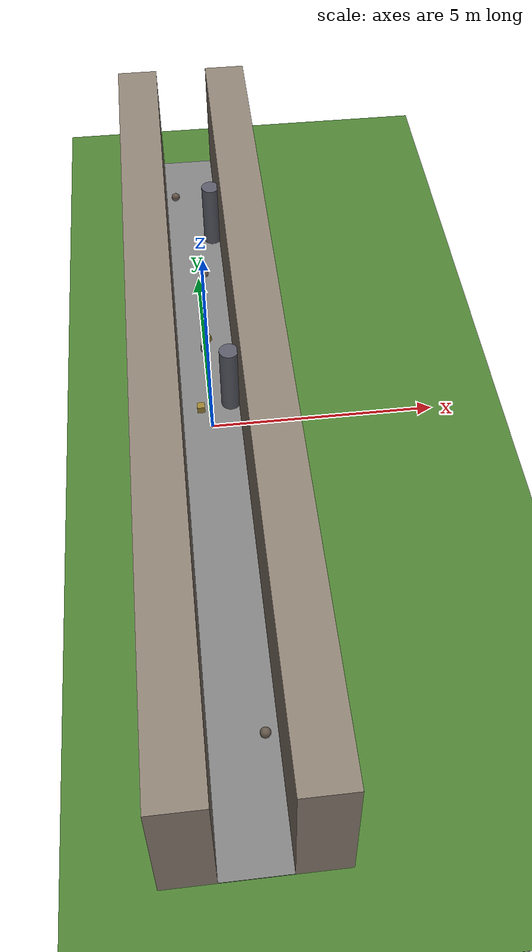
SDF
<?xml version="1.0" ?>
<sdf version="1.9">
  <world name="narrow_alley">
    <physics name="1ms" type="ignore">
      <max_step_size>0.001</max_step_size>
      <real_time_factor>1.0</real_time_factor>
    </physics>
    <plugin filename="gz-sim-physics-system" name="gz::sim::systems::Physics"/>
    <plugin filename="gz-sim-scene-broadcaster-system" name="gz::sim::systems::SceneBroadcaster"/>
    <plugin filename="gz-sim-sensors-system" name="gz::sim::systems::Sensors">
      <render_engine>ogre2</render_engine>
    </plugin>
    <plugin filename="gz-sim-user-commands-system" name="gz::sim::systems::UserCommands"/>

    <light type="directional" name="sun">
      <cast_shadows>true</cast_shadows>
      <pose>0 0 10 0 0 0</pose>
      <diffuse>0.8 0.8 0.8 1</diffuse>
      <specular>0.2 0.2 0.2 1</specular>
      <attenuation><range>1000</range><constant>0.9</constant><linear>0.01</linear><quadratic>0.001</quadratic></attenuation>
      <direction>-0.5 0.1 -0.9</direction>
    </light>

    <!-- 레이아웃 3: 좁은 골목형 -->

    <model name="ground_plane_visual">
      <static>true</static>
      <pose>0 0 -0.01 0 0 0</pose>
      <link name="link">
        <collision name="collision"><geometry><box><size>60.0 60.0 0.02</size></box></geometry></collision>
        <visual name="visual"><geometry><box><size>60.0 60.0 0.02</size></box></geometry>
          <material><ambient>0.3 0.5 0.2 1</ambient><diffuse>0.3 0.5 0.2 1</diffuse></material></visual>
      </link>
    </model>

    <model name="alley_floor">
      <static>true</static>
      <pose>0 0 0.01 0 0 0</pose>
      <link name="link">
        <collision name="collision"><geometry><box><size>1.3 20.0 0.02</size></box></geometry></collision>
        <visual name="visual"><geometry><box><size>1.3 20.0 0.02</size></box></geometry>
          <material><ambient>0.5 0.5 0.5 1</ambient><diffuse>0.5 0.5 0.5 1</diffuse></material></visual>
      </link>
    </model>

    <model name="wall_left">
      <static>true</static>
      <pose>-1.15 0 1.5 0 0 0</pose>
      <link name="link">
        <collision name="collision"><geometry><box><size>1 20.0 3</size></box></geometry></collision>
        <visual name="visual"><geometry><box><size>1 20.0 3</size></box></geometry>
          <material><ambient>0.55 0.5 0.45 1</ambient><diffuse>0.55 0.5 0.45 1</diffuse></material></visual>
      </link>
    </model>

    <model name="wall_right">
      <static>true</static>
      <pose>1.15 0 1.5 0 0 0</pose>
      <link name="link">
        <collision name="collision"><geometry><box><size>1 20.0 3</size></box></geometry></collision>
        <visual name="visual"><geometry><box><size>1 20.0 3</size></box></geometry>
          <material><ambient>0.55 0.5 0.45 1</ambient><diffuse>0.55 0.5 0.45 1</diffuse></material></visual>
      </link>
    </model>

    <model name="alley_obstacle_0">
      <static>true</static>
      <pose>-0.23 0.50 0.11 0 0 0.02</pose>
      <link name="link">
        <collision name="collision"><geometry><box><size>0.17 0.17 0.17</size></box></geometry></collision>
        <visual name="visual"><geometry><box><size>0.17 0.17 0.17</size></box></geometry>
          <material><ambient>0.6 0.5 0.2 1</ambient><diffuse>0.6 0.5 0.2 1</diffuse></material></visual>
      </link>
    </model>

    <model name="alley_obstacle_1">
      <static>true</static>
      <pose>-0.02 2.44 0.11 0 0 0</pose>
      <link name="link">
        <collision name="collision"><geometry><cylinder><radius>0.09110763973869937</radius><length>0.18221527947739874</length></cylinder></geometry></collision>
        <visual name="visual"><geometry><cylinder><radius>0.09110763973869937</radius><length>0.18221527947739874</length></cylinder></geometry>
          <material><ambient>0.5 0.5 0.5 1</ambient><diffuse>0.5 0.5 0.5 1</diffuse></material></visual>
      </link>
    </model>

    <model name="alley_obstacle_2">
      <static>true</static>
      <pose>0.06 2.74 0.10 0 0 0.58</pose>
      <link name="link">
        <collision name="collision"><geometry><box><size>0.16 0.16 0.16</size></box></geometry></collision>
        <visual name="visual"><geometry><box><size>0.16 0.16 0.16</size></box></geometry>
          <material><ambient>0.6 0.5 0.2 1</ambient><diffuse>0.6 0.5 0.2 1</diffuse></material></visual>
      </link>
    </model>

    <model name="alley_obstacle_3">
      <static>true</static>
      <pose>0.41 -7.50 0.12 0 0 0</pose>
      <link name="link">
        <collision name="collision"><geometry><sphere><radius>0.10365870447447281</radius></sphere></geometry></collision>
        <visual name="visual"><geometry><sphere><radius>0.10365870447447281</radius></sphere></geometry>
          <material><ambient>0.4 0.35 0.3 1</ambient><diffuse>0.4 0.35 0.3 1</diffuse></material></visual>
      </link>
    </model>

    <model name="alley_obstacle_4">
      <static>true</static>
      <pose>0.18 5.06 0.10 0 0 0</pose>
      <link name="link">
        <collision name="collision"><geometry><sphere><radius>0.07805726316311322</radius></sphere></geometry></collision>
        <visual name="visual"><geometry><sphere><radius>0.07805726316311322</radius></sphere></geometry>
          <material><ambient>0.4 0.35 0.3 1</ambient><diffuse>0.4 0.35 0.3 1</diffuse></material></visual>
      </link>
    </model>

    <model name="alley_obstacle_5">
      <static>true</static>
      <pose>-0.41 8.28 0.13 0 0 0</pose>
      <link name="link">
        <collision name="collision"><geometry><sphere><radius>0.10813495565601447</radius></sphere></geometry></collision>
        <visual name="visual"><geometry><sphere><radius>0.10813495565601447</radius></sphere></geometry>
          <material><ambient>0.4 0.35 0.3 1</ambient><diffuse>0.4 0.35 0.3 1</diffuse></material></visual>
      </link>
    </model>

    <model name="alley_pedestrian_static_0">
      <static>true</static>
      <pose>0.47 0.67 0.85 0 0 0</pose>
      <link name="link">
        <collision name="collision"><geometry><cylinder><radius>0.22</radius><length>1.7</length></cylinder></geometry></collision>
        <visual name="visual"><geometry><cylinder><radius>0.22</radius><length>1.7</length></cylinder></geometry>
          <material><ambient>0.35 0.35 0.4 1</ambient><diffuse>0.35 0.35 0.4 1</diffuse></material></visual>
      </link>
    </model>

    <model name="alley_pedestrian_static_1">
      <static>true</static>
      <pose>0.48 6.55 0.85 0 0 0</pose>
      <link name="link">
        <collision name="collision"><geometry><cylinder><radius>0.22</radius><length>1.7</length></cylinder></geometry></collision>
        <visual name="visual"><geometry><cylinder><radius>0.22</radius><length>1.7</length></cylinder></geometry>
          <material><ambient>0.35 0.35 0.4 1</ambient><diffuse>0.35 0.35 0.4 1</diffuse></material></visual>
      </link>
    </model>

  </world>
</sdf>
